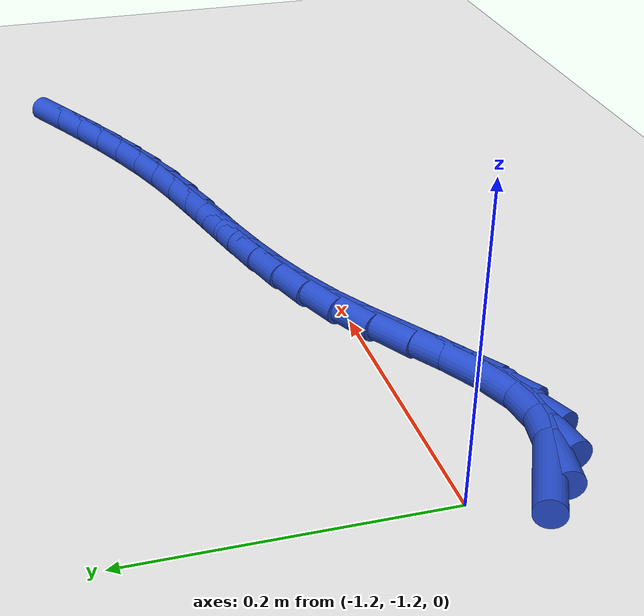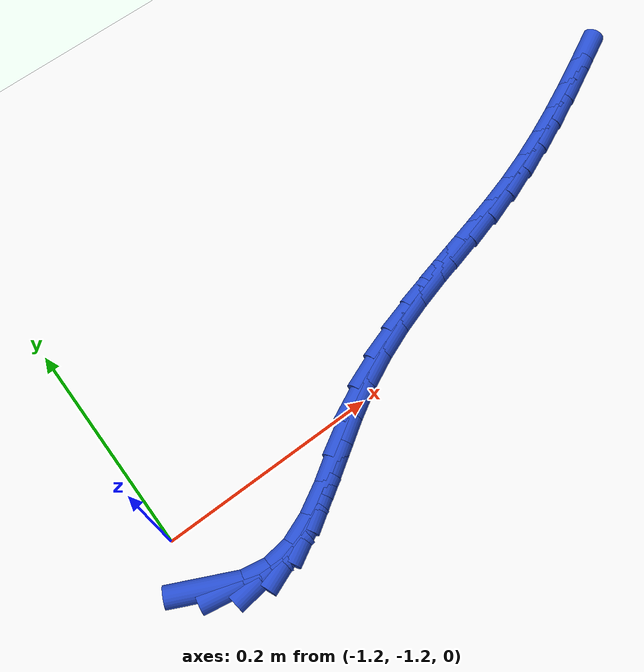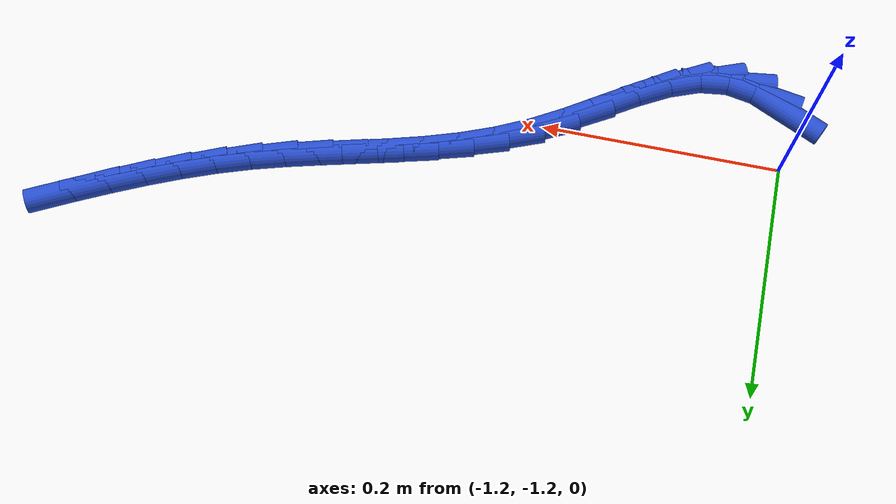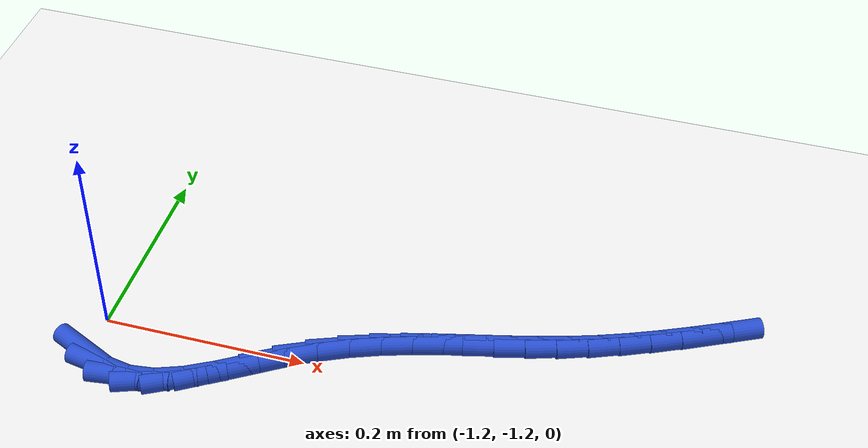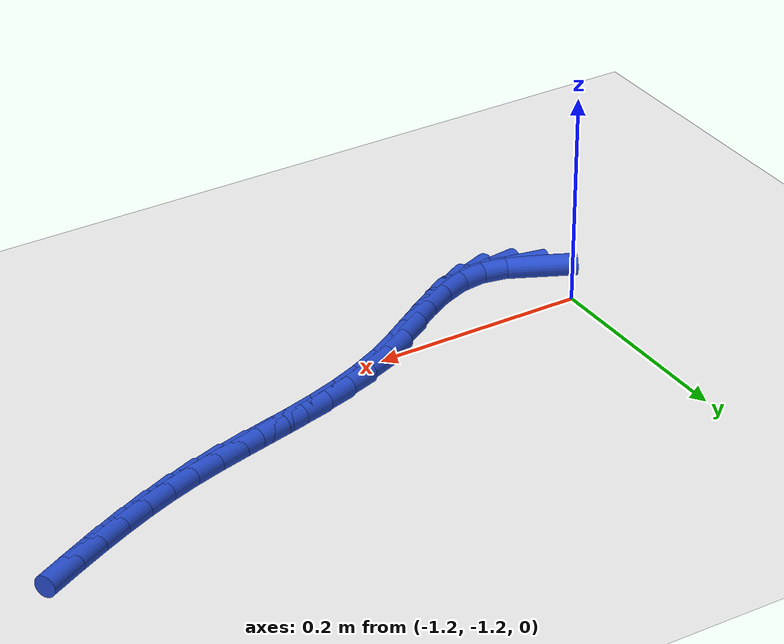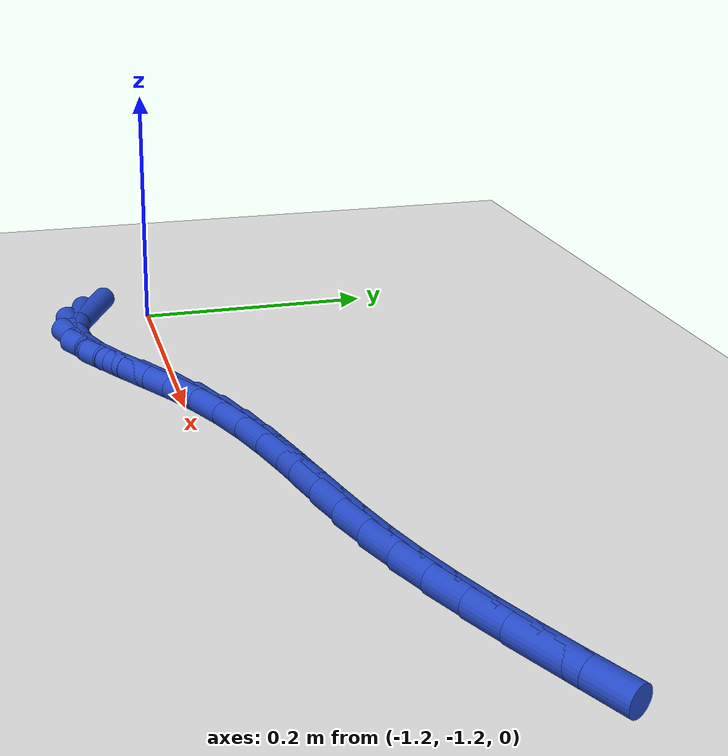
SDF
<sdf version="1.6">
 <world name="default">
  <model name="ground_plane">
   <static>1</static>
   <link name="link">
    <collision name="collision">
     <geometry><plane><normal>0 0 1</normal><size>100 100</size></plane></geometry>
     <surface><friction><ode><mu>100</mu><mu2>50</mu2></ode></friction></surface>
    </collision>
    <visual name="visual">
     <cast_shadows>0</cast_shadows>
     <geometry><plane><normal>0 0 1</normal><size>100 100</size></plane></geometry>
     <material>
      <script><uri>file://media/materials/scripts/gazebo.material</uri><name>Gazebo/WhiteGlow</name></script>
     </material>
    </visual>
   </link>
  </model>
  <model name="line">
   <link name="link_195">
    <pose>-1.1934193498876162 -1.252901340992052 0.01 0 1.57 -0.4477859696598121</pose>
    <collision name="collision">
     <geometry><cylinder><radius>0.01</radius><length>0.08</length></cylinder></geometry>
    </collision>
    <visual name="visual">
     <material>
      <script><name>Gazebo/Blue</name><uri>file://media/materials/scripts/gazebo.material</uri></script>
     </material>
     <geometry><cylinder><radius>0.01</radius><length>0.08</length></cylinder></geometry>
    </visual>
   </link>
   <link name="link_196">
    <pose>-1.1706179511537624 -1.2638534757708624 0.01 0 1.57 -0.183305921621837</pose>
    <collision name="collision">
     <geometry><cylinder><radius>0.01</radius><length>0.08</length></cylinder></geometry>
    </collision>
    <visual name="visual">
     <material>
      <script><name>Gazebo/Blue</name><uri>file://media/materials/scripts/gazebo.material</uri></script>
     </material>
     <geometry><cylinder><radius>0.01</radius><length>0.08</length></cylinder></geometry>
    </visual>
   </link>
   <link name="link_197">
    <pose>-1.1471147517978337 -1.2682106630998295 0.01 0 1.57 0.12659512757606203</pose>
    <collision name="collision">
     <geometry><cylinder><radius>0.01</radius><length>0.08</length></cylinder></geometry>
    </collision>
    <visual name="visual">
     <material>
      <script><name>Gazebo/Blue</name><uri>file://media/materials/scripts/gazebo.material</uri></script>
     </material>
     <geometry><cylinder><radius>0.01</radius><length>0.08</length></cylinder></geometry>
    </visual>
   </link>
   <link name="link_198">
    <pose>-1.1227990419627172 -1.265115862257445 0.01 0 1.57 0.3689237339755915</pose>
    <collision name="collision">
     <geometry><cylinder><radius>0.01</radius><length>0.08</length></cylinder></geometry>
    </collision>
    <visual name="visual">
     <material>
      <script><name>Gazebo/Blue</name><uri>file://media/materials/scripts/gazebo.material</uri></script>
     </material>
     <geometry><cylinder><radius>0.01</radius><length>0.08</length></cylinder></geometry>
    </visual>
   </link>
   <link name="link_199">
    <pose>-1.0976828949626105 -1.255405319348374 0.01 0 1.57 0.5065156161971904</pose>
    <collision name="collision">
     <geometry><cylinder><radius>0.01</radius><length>0.08</length></cylinder></geometry>
    </collision>
    <visual name="visual">
     <material>
      <script><name>Gazebo/Blue</name><uri>file://media/materials/scripts/gazebo.material</uri></script>
     </material>
     <geometry><cylinder><radius>0.01</radius><length>0.08</length></cylinder></geometry>
    </visual>
   </link>
   <link name="link_200">
    <pose>-1.071862880240222 -1.2410805556508668 0.01 0 1.57 0.5693689441660581</pose>
    <collision name="collision">
     <geometry><cylinder><radius>0.01</radius><length>0.08</length></cylinder></geometry>
    </collision>
    <visual name="visual">
     <material>
      <script><name>Gazebo/Blue</name><uri>file://media/materials/scripts/gazebo.material</uri></script>
     </material>
     <geometry><cylinder><radius>0.01</radius><length>0.08</length></cylinder></geometry>
    </visual>
   </link>
   <link name="link_201">
    <pose>-1.0454372329860295 -1.224166064555116 0.01 0 1.57 0.5756765922425932</pose>
    <collision name="collision">
     <geometry><cylinder><radius>0.01</radius><length>0.08</length></cylinder></geometry>
    </collision>
    <visual name="visual">
     <material>
      <script><name>Gazebo/Blue</name><uri>file://media/materials/scripts/gazebo.material</uri></script>
     </material>
     <geometry><cylinder><radius>0.01</radius><length>0.08</length></cylinder></geometry>
    </visual>
   </link>
   <link name="link_202">
    <pose>-1.0185041883905126 -1.206686339451315 0.01 0 1.57 0.5302041661294525</pose>
    <collision name="collision">
     <geometry><cylinder><radius>0.01</radius><length>0.08</length></cylinder></geometry>
    </collision>
    <visual name="visual">
     <material>
      <script><name>Gazebo/Blue</name><uri>file://media/materials/scripts/gazebo.material</uri></script>
     </material>
     <geometry><cylinder><radius>0.01</radius><length>0.08</length></cylinder></geometry>
    </visual>
   </link>
   <link name="link_203">
    <pose>-0.9911619168117048 -1.1906585376880332 0.01 0 1.57 0.45038780008912327</pose>
    <collision name="collision">
     <geometry><cylinder><radius>0.01</radius><length>0.08</length></cylinder></geometry>
    </collision>
    <visual name="visual">
     <material>
      <script><name>Gazebo/Blue</name><uri>file://media/materials/scripts/gazebo.material</uri></script>
     </material>
     <geometry><cylinder><radius>0.01</radius><length>0.08</length></cylinder></geometry>
    </visual>
   </link>
   <link name="link_204">
    <pose>-0.9635013765227454 -1.1772837413385904 0.01 0 1.57 0.37765824512315427</pose>
    <collision name="collision">
     <geometry><cylinder><radius>0.01</radius><length>0.08</length></cylinder></geometry>
    </collision>
    <visual name="visual">
     <material>
      <script><name>Gazebo/Blue</name><uri>file://media/materials/scripts/gazebo.material</uri></script>
     </material>
     <geometry><cylinder><radius>0.01</radius><length>0.08</length></cylinder></geometry>
    </visual>
   </link>
   <link name="link_205">
    <pose>-0.9355998468502402 -1.1662152068166676 0.01 0 1.57 0.31938187623540304</pose>
    <collision name="collision">
     <geometry><cylinder><radius>0.01</radius><length>0.08</length></cylinder></geometry>
    </collision>
    <visual name="visual">
     <material>
      <script><name>Gazebo/Blue</name><uri>file://media/materials/scripts/gazebo.material</uri></script>
     </material>
     <geometry><cylinder><radius>0.01</radius><length>0.08</length></cylinder></geometry>
    </visual>
   </link>
   <link name="link_206">
    <pose>-0.9075330803256537 -1.1569334277658805 0.01 0 1.57 0.2773105951705704</pose>
    <collision name="collision">
     <geometry><cylinder><radius>0.01</radius><length>0.08</length></cylinder></geometry>
    </collision>
    <visual name="visual">
     <material>
      <script><name>Gazebo/Blue</name><uri>file://media/materials/scripts/gazebo.material</uri></script>
     </material>
     <geometry><cylinder><radius>0.01</radius><length>0.08</length></cylinder></geometry>
    </visual>
   </link>
   <link name="link_207">
    <pose>-0.8793768294804496 -1.1489188978298432 0.01 0 1.57 0.25245822874596546</pose>
    <collision name="collision">
     <geometry><cylinder><radius>0.01</radius><length>0.08</length></cylinder></geometry>
    </collision>
    <visual name="visual">
     <material>
      <script><name>Gazebo/Blue</name><uri>file://media/materials/scripts/gazebo.material</uri></script>
     </material>
     <geometry><cylinder><radius>0.01</radius><length>0.08</length></cylinder></geometry>
    </visual>
   </link>
   <link name="link_208">
    <pose>-0.8512068468460929 -1.141652110652171 0.01 0 1.57 0.2453657147233958</pose>
    <collision name="collision">
     <geometry><cylinder><radius>0.01</radius><length>0.08</length></cylinder></geometry>
    </collision>
    <visual name="visual">
     <material>
      <script><name>Gazebo/Blue</name><uri>file://media/materials/scripts/gazebo.material</uri></script>
     </material>
     <geometry><cylinder><radius>0.01</radius><length>0.08</length></cylinder></geometry>
    </visual>
   </link>
   <link name="link_209">
    <pose>-0.8230988849540476 -1.1346135598764782 0.01 0 1.57 0.2562950812416129</pose>
    <collision name="collision">
     <geometry><cylinder><radius>0.01</radius><length>0.08</length></cylinder></geometry>
    </collision>
    <visual name="visual">
     <material>
      <script><name>Gazebo/Blue</name><uri>file://media/materials/scripts/gazebo.material</uri></script>
     </material>
     <geometry><cylinder><radius>0.01</radius><length>0.08</length></cylinder></geometry>
    </visual>
   </link>
   <link name="link_210">
    <pose>-0.7951286963357788 -1.1272837391463804 0.01 0 1.57 0.2852843910373147</pose>
    <collision name="collision">
     <geometry><cylinder><radius>0.01</radius><length>0.08</length></cylinder></geometry>
    </collision>
    <visual name="visual">
     <material>
      <script><name>Gazebo/Blue</name><uri>file://media/materials/scripts/gazebo.material</uri></script>
     </material>
     <geometry><cylinder><radius>0.01</radius><length>0.08</length></cylinder></geometry>
    </visual>
   </link>
   <link name="link_211">
    <pose>-0.7673720335227507 -1.119143142105492 0.01 0 1.57 0.32941581981724666</pose>
    <collision name="collision">
     <geometry><cylinder><radius>0.01</radius><length>0.08</length></cylinder></geometry>
    </collision>
    <visual name="visual">
     <material>
      <script><name>Gazebo/Blue</name><uri>file://media/materials/scripts/gazebo.material</uri></script>
     </material>
     <geometry><cylinder><radius>0.01</radius><length>0.08</length></cylinder></geometry>
    </visual>
   </link>
   <link name="link_212">
    <pose>-0.7398913601217217 -1.1097482616362724 0.01 0 1.57 0.37217565172597866</pose>
    <collision name="collision">
     <geometry><cylinder><radius>0.01</radius><length>0.08</length></cylinder></geometry>
    </collision>
    <visual name="visual">
     <material>
      <script><name>Gazebo/Blue</name><uri>file://media/materials/scripts/gazebo.material</uri></script>
     </material>
     <geometry><cylinder><radius>0.01</radius><length>0.08</length></cylinder></geometry>
    </visual>
   </link>
   <link name="link_213">
    <pose>-0.7126677546978428 -1.0991210309297275 0.01 0 1.57 0.40748838396132087</pose>
    <collision name="collision">
     <geometry><cylinder><radius>0.01</radius><length>0.08</length></cylinder></geometry>
    </collision>
    <visual name="visual">
     <material>
      <script><name>Gazebo/Blue</name><uri>file://media/materials/scripts/gazebo.material</uri></script>
     </material>
     <geometry><cylinder><radius>0.01</radius><length>0.08</length></cylinder></geometry>
    </visual>
   </link>
   <link name="link_214">
    <pose>-0.6856514993340822 -1.0874595079767924 0.01 0 1.57 0.4355068127835028</pose>
    <collision name="collision">
     <geometry><cylinder><radius>0.01</radius><length>0.08</length></cylinder></geometry>
    </collision>
    <visual name="visual">
     <material>
      <script><name>Gazebo/Blue</name><uri>file://media/materials/scripts/gazebo.material</uri></script>
     </material>
     <geometry><cylinder><radius>0.01</radius><length>0.08</length></cylinder></geometry>
    </visual>
   </link>
   <link name="link_215">
    <pose>-0.6587928182198582 -1.0749620818610701 0.01 0 1.57 0.45642971104477287</pose>
    <collision name="collision">
     <geometry><cylinder><radius>0.01</radius><length>0.08</length></cylinder></geometry>
    </collision>
    <visual name="visual">
     <material>
      <script><name>Gazebo/Blue</name><uri>file://media/materials/scripts/gazebo.material</uri></script>
     </material>
     <geometry><cylinder><radius>0.01</radius><length>0.08</length></cylinder></geometry>
    </visual>
   </link>
   <link name="link_216">
    <pose>-0.6320419391641268 -1.0618271349780066 0.01 0 1.57 0.4721099389974072</pose>
    <collision name="collision">
     <geometry><cylinder><radius>0.01</radius><length>0.08</length></cylinder></geometry>
    </collision>
    <visual name="visual">
     <material>
      <script><name>Gazebo/Blue</name><uri>file://media/materials/scripts/gazebo.material</uri></script>
     </material>
     <geometry><cylinder><radius>0.01</radius><length>0.08</length></cylinder></geometry>
    </visual>
   </link>
  </model>
 </world>
</sdf>
